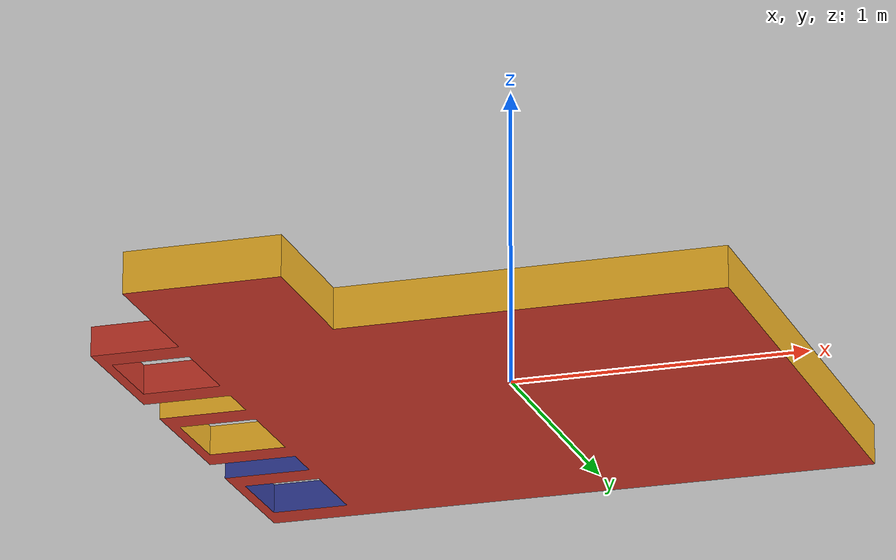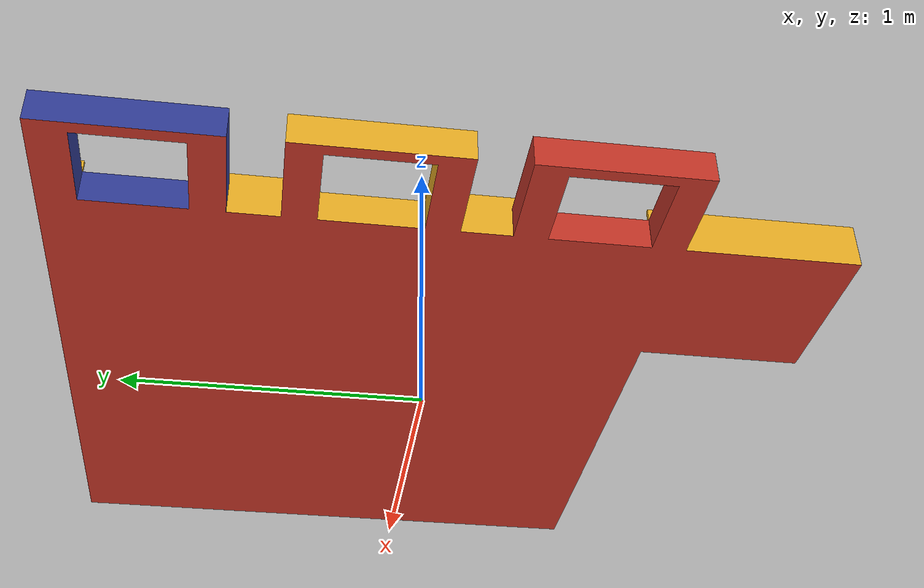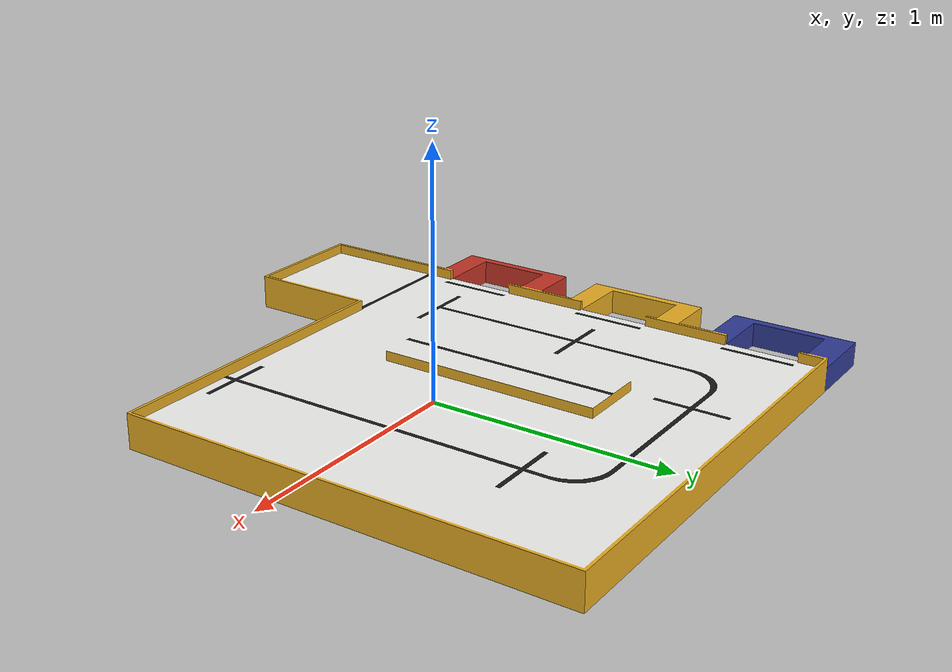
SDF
<?xml version="1.0"?>
<sdf version='1.5'>
  <model name="maze">
    <static>true</static>
    <link name="maze">
      <collision name="collision">
        <geometry>
          <mesh>
            <uri>model://maze/STL/feild.stl</uri>
          </mesh>
        </geometry>
        <surface>
          <friction>
            <ode>
              <mu>0.3</mu>
              <mu2>0.3</mu2>
            </ode>
          </friction>
        </surface>
      </collision>
      <visual name="visual">
        <geometry>
          <mesh>
            <uri>model://maze/DAE/feild.dae</uri>
          </mesh>
        </geometry>
      </visual>
    </link>
  </model>
</sdf>
